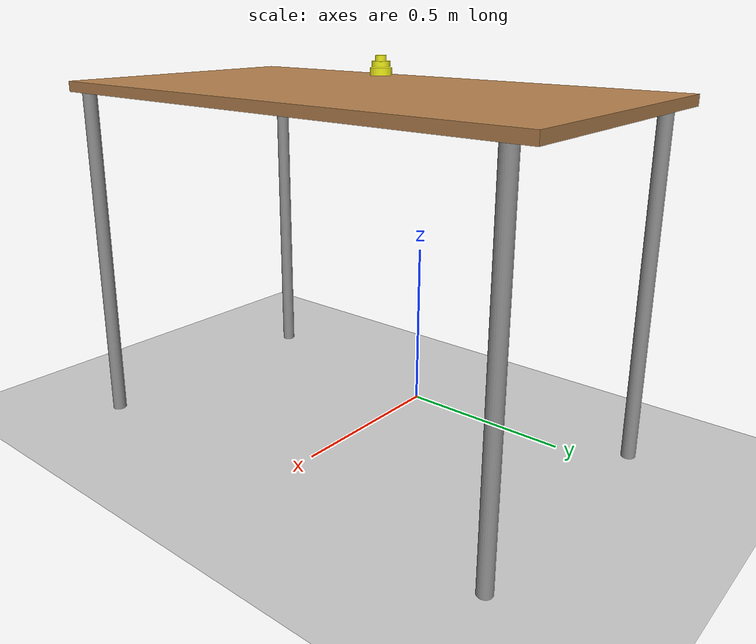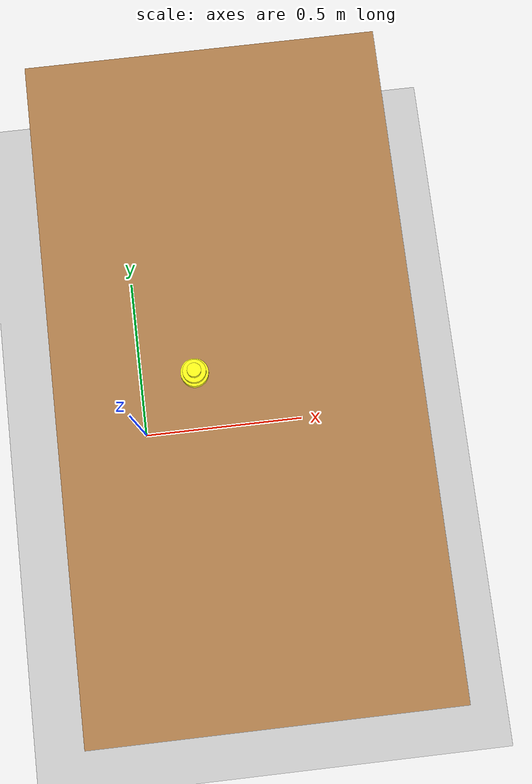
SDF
<?xml version="1.0" ?>
<sdf version="1.6">
  <world name="CRANE-X7 with Table">
    <scene>
      <ambient>0.7 0.7 0.7 1</ambient>
      <background>0.1 0.1 0.1 1</background>
    </scene>
    <include>
      <uri>model://sun</uri>
    </include>

    <model name="table">
      <include>
        <uri>model://table</uri>
      </include>

      <!-- X7を机の端に配置するため、机を移動、回転する -->
      <pose>0.29 0 0 0 0 1.5708</pose>
    </model>

  <model name="unko">
    <pose>0 0 1.05 0 0 0</pose>
    <link name="unko_3">
      <pose>0.2 0 0 0 0 0</pose>
      <inertial>
        <mass>0.03</mass>
        <inertia>
          <ixx>1e-4</ixx>
          <ixy>0.0</ixy>
          <ixz>0.0</ixz>
          <iyy>1e-4</iyy>
          <iyz>0.0</iyz>
          <izz>1e-4</izz>
        </inertia>
      </inertial>
      <collision name="collision">
        <geometry>
          <cylinder>
		  <radius>0.03</radius>
		  <length>0.02</length>
          </cylinder>
        </geometry>
      </collision>
      <visual name="visual">
        <material>
          <diffuse>1.0 1.0 0.1 1</diffuse>
          <ambient>1.0 1.0 0.1 1</ambient>
          <specular>0 0 0 0</specular>
          <emissive>0 0 0 1</emissive>
        </material>
        <geometry>
          <cylinder>
		  <radius>0.03</radius>
		  <length>0.02</length>
          </cylinder>
        </geometry>
      </visual>
    </link>

  <joint name="unko_32_joint" type="fixed">
      <parent>unko_3</parent>
      <child>unko_2</child>
      <pose>0.2 0 0.02 0 0</pose>

      <axis>
        <xyz>0 0 1</xyz>
      </axis>
  </joint>

    <link name="unko_2">
      <pose>0.2 0 0.02 0 0 0</pose>
      <inertial>
        <mass>0.01</mass>
        <inertia>
          <ixx>1e-4</ixx>
          <ixy>0.0</ixy>
          <ixz>0.0</ixz>
          <iyy>1e-4</iyy>
          <iyz>0.0</iyz>
          <izz>1e-4</izz>
        </inertia>
      </inertial>
      <collision name="collision">
        <geometry>
          <cylinder>
		  <radius>0.025</radius>
		  <length>0.015</length>
          </cylinder>
        </geometry>
      </collision>
      <visual name="visual">
        <material>
          <diffuse>1.0 1.0 0.1 1</diffuse>
          <ambient>1.0 1.0 0.1 1</ambient>
          <specular>0 0 0 0</specular>
          <emissive>0 0 0 1</emissive>
        </material>
        <geometry>
          <cylinder>
		  <radius>0.025</radius>
		  <length>0.015</length>
          </cylinder>
        </geometry>
      </visual>
    </link>

  <joint name="unko_21_joint" type="fixed">
       <parent>unko_2</parent>
       <child>unko_1</child>
       <pose>0.2 0 0.035 0 0</pose>
       <axis>
          <xyz>0 0 1</xyz>
       </axis>
   </joint>

    <link name="unko_1">
      <pose>0.2 0 0.035 0 0 0</pose>
      <inertial>
        <mass>0.01</mass>
        <inertia>
          <ixx>1e-4</ixx>
          <ixy>0.0</ixy>
          <ixz>0.0</ixz>
          <iyy>1e-4</iyy>
          <iyz>0.0</iyz>
          <izz>1e-4</izz>
        </inertia>
      </inertial>
      <collision name="collision">
        <geometry>
          <cylinder>
		  <radius>0.015</radius>
		  <length>0.015</length>
          </cylinder>
        </geometry>
      </collision>
      <visual name="visual">
        <material>
          <diffuse>1.0 1.0 0.1 1</diffuse>
          <ambient>1.0 1.0 0.1 1</ambient>
          <specular>0 0 0 0</specular>
          <emissive>0 0 0 1</emissive>
        </material>
        <geometry>
          <cylinder>
		  <radius>0.015</radius>
		  <length>0.015</length>
          </cylinder>
        </geometry>
      </visual>
    </link>
  </model>

    <model name="ground_plane">
      <include>
        <uri>model://ground_plane</uri>
      </include>

      <joint name='ground_joint' type='fixed'>
        <parent>ground_plane::link</parent>
        <child>table::link</child>
      </joint>
    </model>
  </world>
</sdf>

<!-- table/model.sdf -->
<sdf version="1.5">
  <model name="table">
    <static>true</static>
    <link name="link">
      <collision name="surface">
        <pose>0 0 1.0 0 0 0</pose>
        <geometry>
          <box>
            <size>1.5 0.8 0.03</size>
          </box>
        </geometry>
        <surface>
          <friction>
            <ode>
              <mu>0.6</mu>
              <mu2>0.6</mu2>
            </ode>
          </friction>
        </surface>
      </collision>
      <visual name="visual1">
        <pose>0 0 1.0 0 0 0</pose>
        <geometry>
          <box>
            <size>1.5 0.8 0.03</size>
          </box>
        </geometry>
        <material>
          <script>
            <uri>model://media/materials/scripts/gazebo.material</uri>
            <name>Gazebo/Wood</name>
          </script>
        </material>
      </visual>
      <collision name="front_left_leg">
        <pose>0.68 0.38 0.5 0 0 0</pose>
        <geometry>
          <cylinder>
            <radius>0.02</radius>
            <length>1.0</length>
          </cylinder>
        </geometry>
      </collision>
      <visual name="front_left_leg">
        <pose>0.68 0.38 0.5 0 0 0</pose>
        <geometry>
          <cylinder>
            <radius>0.02</radius>
            <length>1.0</length>
          </cylinder>
        </geometry>
        <material>
          <script>
            <uri>model://media/materials/scripts/gazebo.material</uri>
            <name>Gazebo/Grey</name>
          </script>
        </material>
      </visual>
      <collision name="front_right_leg">
        <pose>0.68 -0.38 0.5 0 0 0</pose>
        <geometry>
          <cylinder>
            <radius>0.02</radius>
            <length>1.0</length>
          </cylinder>
        </geometry>
      </collision>
      <visual name="front_right_leg">
        <pose>0.68 -0.38 0.5 0 0 0</pose>
        <geometry>
          <cylinder>
            <radius>0.02</radius>
            <length>1.0</length>
          </cylinder>
        </geometry>
        <material>
          <script>
            <uri>model://media/materials/scripts/gazebo.material</uri>
            <name>Gazebo/Grey</name>
          </script>
        </material>
      </visual>
      <collision name="back_right_leg">
        <pose>-0.68 -0.38 0.5 0 0 0</pose>
        <geometry>
          <cylinder>
            <radius>0.02</radius>
            <length>1.0</length>
          </cylinder>
        </geometry>
      </collision>
      <visual name="back_right_leg">
        <pose>-0.68 -0.38 0.5 0 0 0</pose>
        <geometry>
          <cylinder>
            <radius>0.02</radius>
            <length>1.0</length>
          </cylinder>
        </geometry>
        <material>
          <script>
            <uri>model://media/materials/scripts/gazebo.material</uri>
            <name>Gazebo/Grey</name>
          </script>
        </material>
      </visual>
      <collision name="back_left_leg">
        <pose>-0.68 0.38 0.5 0 0 0</pose>
        <geometry>
          <cylinder>
            <radius>0.02</radius>
            <length>1.0</length>
          </cylinder>
        </geometry>
      </collision>
      <visual name="back_left_leg">
        <pose>-0.68 0.38 0.5 0 0 0</pose>
        <geometry>
          <cylinder>
            <radius>0.02</radius>
            <length>1.0</length>
          </cylinder>
        </geometry>
        <material>
          <script>
            <uri>model://media/materials/scripts/gazebo.material</uri>
            <name>Gazebo/Grey</name>
          </script>
        </material>
      </visual>
    </link>
  </model>
</sdf>
